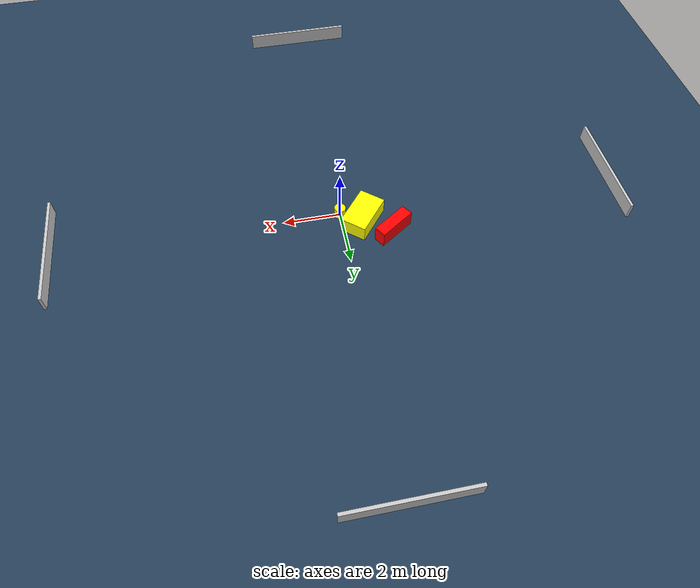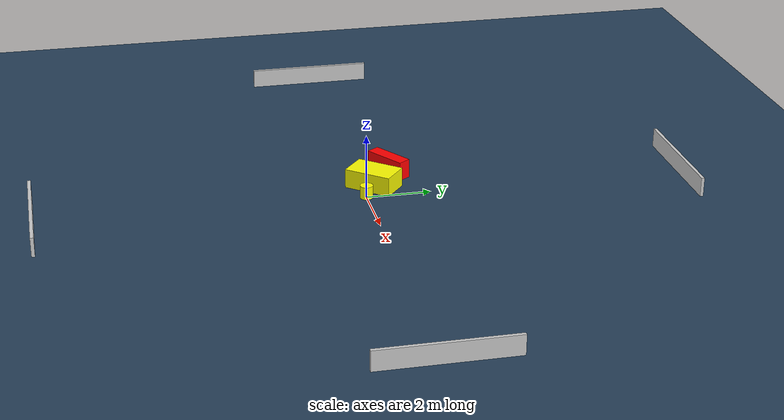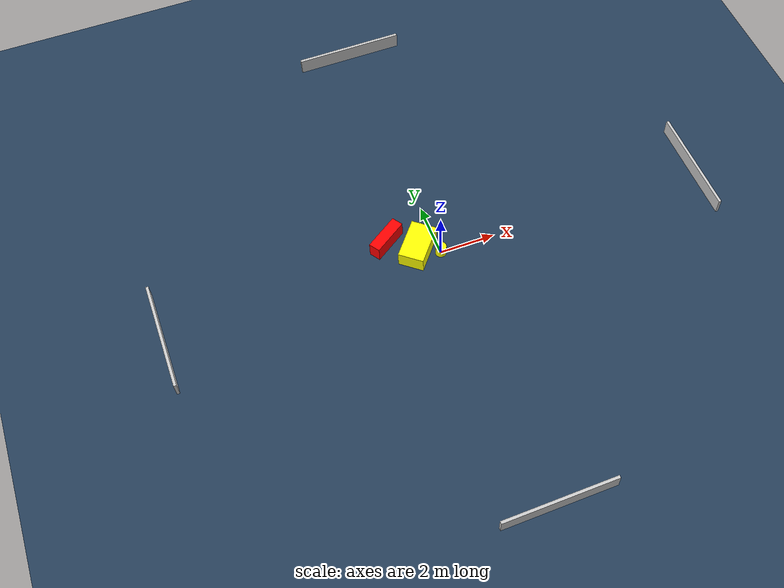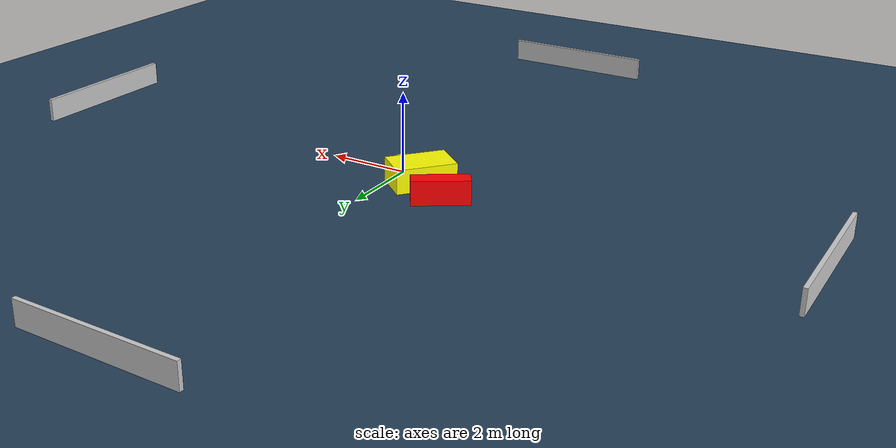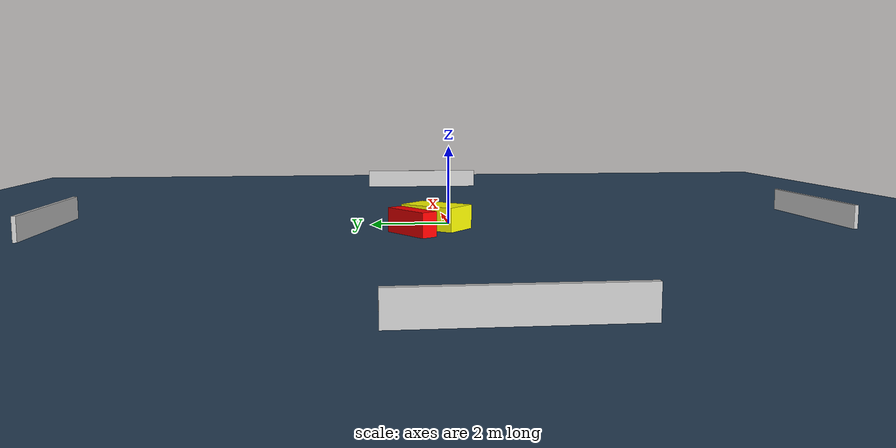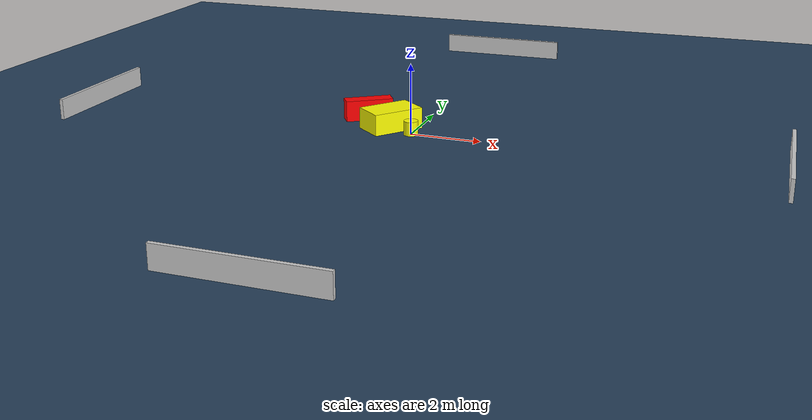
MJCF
<?xml version="1.0" ?>
<mujoco model="generated_environment">
  <option timestep="0.01" integrator="RK4" cone="elliptic"/>
  <default>
    <geom density="1"/>
  </default>
  <asset>
    <texture builtin="gradient" height="3072" name="skybox" rgb1="0.3 0.5 0.7" rgb2="0 0 0" type="skybox" width="512"/>
    <texture builtin="checker" height="300" name="groundplane" rgb1="0.2 0.3 0.4" rgb2="0.1 0.2 0.3" type="2d" width="300"/>
    <material name="groundplane" reflectance="0.2" texrepeat="5 5" texture="groundplane"/>
  </asset>
  <worldbody>
    <light dir="0 0 -1" directional="true" pos="0 0 1.5"/>
    <geom condim="3" friction="0.5 0.005 0.001" material="groundplane" name="floor" pos="0 0 0" size="0 0 0.05" type="plane"/>
    <body name="walls">
      <geom name="wall_1" condim="4" pos="-10.0 0.0 0.3" rgba="0.800000011920929 0.800000011920929 0.800000011920929 1.0" size="0.05 2.0 0.3" type="box"/>
      <geom name="wall_2" condim="4" pos="10.0 0.0 0.3" rgba="0.800000011920929 0.800000011920929 0.800000011920929 1.0" size="0.05 2.0 0.3" type="box"/>
      <geom name="wall_3" condim="4" pos="0.0 -10.0 0.3" rgba="0.800000011920929 0.800000011920929 0.800000011920929 1.0" size="2.0 0.05 0.3" type="box"/>
      <geom name="wall_4" condim="4" pos="0.0 10.0 0.3" rgba="0.800000011920929 0.800000011920929 0.800000011920929 1.0" size="2.0 0.05 0.3" type="box"/>
    </body>
    <body name="robot">
      <joint name="joint_x" type="slide" pos="0 0 0" axis="1 0 0"/>
      <joint name="joint_y" type="slide" pos="0 0 0" axis="0 1 0"/>
      <geom name="robot" type="cylinder" pos="0.0 0.0 0.2" size="0.2 0.2 0.0" mass="5.0" friction="1.0 0.005 0.0001" condim="4" rgba="1.0 1.0 0.0 1.0"/>
    </body>
    <body name="obstacle_1_movable">
      <geom name="obstacle_1_movable" condim="4" pos="-0.7318289000208137 0.383701642054425 0.3" euler="0 0 320.5339446515027" friction="0.0 0.005 0.001" rgba="1.0 1.0 0.0 1.0" size="0.46209358083488083 0.746877540632652 0.3" type="box" mass="0.1"/>
      <joint type="free"/>
    </body>
    <body name="obstacle_2_static">
      <geom name="obstacle_2_static" condim="4" pos="-1.667885197631554 1.0545380266164768 0.3" euler="0 0 213.66824559005826" friction="0.0 0.005 0.001" rgba="1.0 0.0 0.0 1.0" size="0.6865795105639219 0.210542044464091 0.3" type="box"/>
    </body>
  </worldbody>
  <actuator>
    <motor name="actuator_x" joint="joint_x" gear="1" ctrlrange="-1 1"/>
    <motor name="actuator_y" joint="joint_y" gear="1" ctrlrange="-1 1"/>
  </actuator>
</mujoco>
